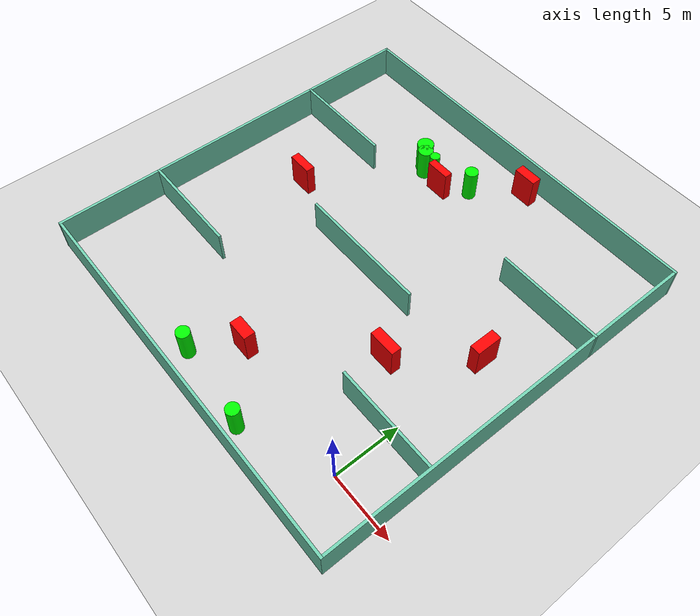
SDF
<sdf version="1.7">
 <world name="default">
  <light name="sun" type="directional">
   <pose>0 0 10 0 -0 0</pose>
   <diffuse>0.8 0.8 0.8 1</diffuse>
   <specular>0.2 0.2 0.2 1</specular>
   <attenuation>
    <range>1000</range>
    <constant>0.9</constant>
    <linear>0.01</linear>
    <quadratic>0.001</quadratic>
   </attenuation>
   <direction>-0.5 0.1 -0.9</direction>
   <spot><inner_angle>0</inner_angle><outer_angle>0</outer_angle><falloff>0</falloff></spot>
  </light>
  <model name="ground_plane">
   <static>1</static>
   <link name="link">
    <collision name="collision">
     <geometry><plane><normal>0 0 1</normal><size>100 100</size></plane></geometry>
     <surface>
      <contact><collide_bitmask>65535</collide_bitmask></contact>
      <friction><ode><mu>100</mu><mu2>50</mu2></ode></friction>
     </surface>
    </collision>
    <visual name="visual">
     <cast_shadows>0</cast_shadows>
     <geometry><plane><normal>0 0 1</normal><size>100 100</size></plane></geometry>
     <material>
      <script><uri>file://media/materials/scripts/gazebo.material</uri><name>Gazebo/Grey</name></script>
     </material>
    </visual>
   </link>
  </model>
  <gravity>0 0 -9.8</gravity>
  <magnetic_field>6e-06 2.3e-05 -4.2e-05</magnetic_field>
  <atmosphere type="adiabatic"/>
  <physics type="ode">
   <max_step_size>0.001</max_step_size>
   <real_time_factor>1</real_time_factor>
   <real_time_update_rate>1000</real_time_update_rate>
  </physics>
  <scene><ambient>0.4 0.4 0.4 1</ambient><background>0.7 0.7 0.7 1</background><shadows>1</shadows></scene>
  <spherical_coordinates>
   <surface_model>EARTH_WGS84</surface_model>
   <latitude_deg>0</latitude_deg>
   <longitude_deg>0</longitude_deg>
   <elevation>0</elevation>
   <heading_deg>0</heading_deg>
  </spherical_coordinates>
  <model name="my_base_walls">
   <link name="Wall_10">
    <collision name="Wall_10_Collision">
     <geometry><box><size>8.2 0.2 2.5</size></box></geometry>
     <pose>0 0 1.25 0 -0 0</pose>
    </collision>
    <visual name="Wall_10_Visual">
     <pose>0 0 1.25 0 -0 0</pose>
     <geometry><box><size>8.2 0.2 2.5</size></box></geometry>
     <material>
      <script><uri>file://media/materials/scripts/gazebo.material</uri><name>Gazebo/Grey</name></script>
      <ambient>0.435294 0.796078 0.67451 1</ambient>
     </material>
     <meta><layer>0</layer></meta>
    </visual>
    <pose>-11 -7 0 0 -0 0</pose>
   </link>
   <link name="Wall_12">
    <collision name="Wall_12_Collision">
     <geometry><box><size>8.2 0.2 2.5</size></box></geometry>
     <pose>0 0 1.25 0 -0 0</pose>
    </collision>
    <visual name="Wall_12_Visual">
     <pose>0 0 1.25 0 -0 0</pose>
     <geometry><box><size>8.2 0.2 2.5</size></box></geometry>
     <material>
      <script><uri>file://media/materials/scripts/gazebo.material</uri><name>Gazebo/Grey</name></script>
      <ambient>0.435294 0.796078 0.67451 1</ambient>
     </material>
     <meta><layer>0</layer></meta>
    </visual>
    <pose>-11 7 0 0 -0 0</pose>
   </link>
   <link name="Wall_14">
    <collision name="Wall_14_Collision">
     <geometry><box><size>8.2 0.2 2.5</size></box></geometry>
     <pose>0 0 1.25 0 -0 0</pose>
    </collision>
    <visual name="Wall_14_Visual">
     <pose>0 0 1.25 0 -0 0</pose>
     <geometry><box><size>8.2 0.2 2.5</size></box></geometry>
     <material>
      <script><uri>file://media/materials/scripts/gazebo.material</uri><name>Gazebo/Grey</name></script>
      <ambient>0.435294 0.796078 0.67451 1</ambient>
     </material>
     <meta><layer>0</layer></meta>
    </visual>
    <pose>11 7 0 0 -0 3.14159</pose>
   </link>
   <link name="Wall_16">
    <collision name="Wall_16_Collision">
     <geometry><box><size>10.2 0.2 2.5</size></box></geometry>
     <pose>0 0 1.25 0 -0 0</pose>
    </collision>
    <visual name="Wall_16_Visual">
     <pose>0 0 1.25 0 -0 0</pose>
     <geometry><box><size>10.2 0.2 2.5</size></box></geometry>
     <material>
      <script><uri>file://media/materials/scripts/gazebo.material</uri><name>Gazebo/Grey</name></script>
      <ambient>0.435294 0.796078 0.67451 1</ambient>
     </material>
     <meta><layer>0</layer></meta>
    </visual>
    <pose>0 0 0 0 -0 3.14159</pose>
   </link>
   <link name="Wall_2">
    <collision name="Wall_2_Collision">
     <geometry><box><size>30.2 0.2 2.5</size></box></geometry>
     <pose>0 0 1.25 0 -0 0</pose>
    </collision>
    <visual name="Wall_2_Visual">
     <pose>0 0 1.25 0 -0 0</pose>
     <geometry><box><size>30.2 0.2 2.5</size></box></geometry>
     <material>
      <script><uri>file://media/materials/scripts/gazebo.material</uri><name>Gazebo/Grey</name></script>
      <ambient>0.435294 0.796078 0.67451 1</ambient>
     </material>
     <meta><layer>0</layer></meta>
    </visual>
    <pose>0 -15 0 0 -0 3.14159</pose>
   </link>
   <link name="Wall_3">
    <collision name="Wall_3_Collision">
     <geometry><box><size>30.2 0.2 2.5</size></box></geometry>
     <pose>0 0 1.25 0 -0 0</pose>
    </collision>
    <visual name="Wall_3_Visual">
     <pose>0 0 1.25 0 -0 0</pose>
     <geometry><box><size>30.2 0.2 2.5</size></box></geometry>
     <material>
      <script><uri>file://media/materials/scripts/gazebo.material</uri><name>Gazebo/Grey</name></script>
      <ambient>0.435294 0.796078 0.67451 1</ambient>
     </material>
     <meta><layer>0</layer></meta>
    </visual>
    <pose>-15 0 0 0 -0 1.5708</pose>
   </link>
   <link name="Wall_4">
    <collision name="Wall_4_Collision">
     <geometry><box><size>30.2 0.2 2.5</size></box></geometry>
     <pose>0 0 1.25 0 -0 0</pose>
    </collision>
    <visual name="Wall_4_Visual">
     <pose>0 0 1.25 0 -0 0</pose>
     <geometry><box><size>30.2 0.2 2.5</size></box></geometry>
     <material>
      <script><uri>file://media/materials/scripts/gazebo.material</uri><name>Gazebo/Grey</name></script>
      <ambient>0.435294 0.796078 0.67451 1</ambient>
     </material>
     <meta><layer>0</layer></meta>
    </visual>
    <pose>0 15 0 0 -0 0</pose>
   </link>
   <link name="Wall_6">
    <collision name="Wall_6_Collision">
     <geometry><box><size>30.2 0.2 2.5</size></box></geometry>
     <pose>0 0 1.25 0 -0 0</pose>
    </collision>
    <visual name="Wall_6_Visual">
     <pose>0 0 1.25 0 -0 0</pose>
     <geometry><box><size>30.2 0.2 2.5</size></box></geometry>
     <material>
      <script><uri>file://media/materials/scripts/gazebo.material</uri><name>Gazebo/Grey</name></script>
      <ambient>0.435294 0.796078 0.67451 1</ambient>
     </material>
     <meta><layer>0</layer></meta>
    </visual>
    <pose>15 0 0 0 -0 1.5708</pose>
   </link>
   <link name="Wall_8">
    <collision name="Wall_8_Collision">
     <geometry><box><size>8.2 0.2 2.5</size></box></geometry>
     <pose>0 0 1.25 0 -0 0</pose>
    </collision>
    <visual name="Wall_8_Visual">
     <pose>0 0 1.25 0 -0 0</pose>
     <geometry><box><size>8.2 0.2 2.5</size></box></geometry>
     <material>
      <script><uri>file://media/materials/scripts/gazebo.material</uri><name>Gazebo/Grey</name></script>
      <ambient>0.435294 0.796078 0.67451 1</ambient>
     </material>
     <meta><layer>0</layer></meta>
    </visual>
    <pose>11 -7 0 0 -0 3.14159</pose>
   </link>
   <static>1</static>
   <pose>-11 11 0 0 -0 0</pose>
  </model>
  <model name="cylinder1">
   <static>1</static>
   <link name="link">
    <inertial>
     <mass>1</mass>
     <inertia><ixx>0.5</ixx><ixy>0</ixy><ixz>0</ixz><iyy>0.5</iyy><iyz>0</iyz><izz>1</izz></inertia>
    </inertial>
    <collision name="collision">
     <geometry><cylinder><radius>0.5073382735187829</radius><length>2.5</length></cylinder></geometry>
    </collision>
    <visual name="visual">
     <geometry><cylinder><radius>0.5073382735187829</radius><length>2.5</length></cylinder></geometry>
     <material>
      <ambient>0 1 0 1</ambient>
      <diffuse>0 1 0 1</diffuse>
      <specular>0.1 0.1 0.1 1</specular>
      <emissive>0 0 0 0</emissive>
     </material>
    </visual>
   </link>
   <pose>-11.302781672084139 21.793538430567068 1.25 0 0 0</pose>
  </model>
  <model name="cylinder2">
   <static>1</static>
   <link name="link">
    <inertial>
     <mass>1</mass>
     <inertia><ixx>0.5</ixx><ixy>0</ixy><ixz>0</ixz><iyy>0.5</iyy><iyz>0</iyz><izz>1</izz></inertia>
    </inertial>
    <collision name="collision">
     <geometry><cylinder><radius>0.5021453721136212</radius><length>2.5</length></cylinder></geometry>
    </collision>
    <visual name="visual">
     <geometry><cylinder><radius>0.5021453721136212</radius><length>2.5</length></cylinder></geometry>
     <material>
      <ambient>0 1 0 1</ambient>
      <diffuse>0 1 0 1</diffuse>
      <specular>0.1 0.1 0.1 1</specular>
      <emissive>0 0 0 0</emissive>
     </material>
    </visual>
   </link>
   <pose>-12.861141742715454 -2.1578265313845857 1.25 0 0 0</pose>
  </model>
  <model name="cylinder3">
   <static>1</static>
   <link name="link">
    <inertial>
     <mass>1</mass>
     <inertia><ixx>0.5</ixx><ixy>0</ixy><ixz>0</ixz><iyy>0.5</iyy><iyz>0</iyz><izz>1</izz></inertia>
    </inertial>
    <collision name="collision">
     <geometry><cylinder><radius>0.564566567776275</radius><length>2.5</length></cylinder></geometry>
    </collision>
    <visual name="visual">
     <geometry><cylinder><radius>0.564566567776275</radius><length>2.5</length></cylinder></geometry>
     <material>
      <ambient>0 1 0 1</ambient>
      <diffuse>0 1 0 1</diffuse>
      <specular>0.1 0.1 0.1 1</specular>
      <emissive>0 0 0 0</emissive>
     </material>
    </visual>
   </link>
   <pose>-15.078078833347401 20.641712693369602 1.25 0 0 0</pose>
  </model>
  <model name="cylinder4">
   <static>1</static>
   <link name="link">
    <inertial>
     <mass>1</mass>
     <inertia><ixx>0.5</ixx><ixy>0</ixy><ixz>0</ixz><iyy>0.5</iyy><iyz>0</iyz><izz>1</izz></inertia>
    </inertial>
    <collision name="collision">
     <geometry><cylinder><radius>0.3860494187753831</radius><length>2.5</length></cylinder></geometry>
    </collision>
    <visual name="visual">
     <geometry><cylinder><radius>0.3860494187753831</radius><length>2.5</length></cylinder></geometry>
     <material>
      <ambient>0 1 0 1</ambient>
      <diffuse>0 1 0 1</diffuse>
      <specular>0.1 0.1 0.1 1</specular>
      <emissive>0 0 0 0</emissive>
     </material>
    </visual>
   </link>
   <pose>-14.193650144115388 20.773893561388178 1.25 0 0 0</pose>
  </model>
  <model name="cylinder5">
   <static>1</static>
   <link name="link">
    <inertial>
     <mass>1</mass>
     <inertia><ixx>0.5</ixx><ixy>0</ixy><ixz>0</ixz><iyy>0.5</iyy><iyz>0</iyz><izz>1</izz></inertia>
    </inertial>
    <collision name="collision">
     <geometry><cylinder><radius>0.6325457354973687</radius><length>2.5</length></cylinder></geometry>
    </collision>
    <visual name="visual">
     <geometry><cylinder><radius>0.6325457354973687</radius><length>2.5</length></cylinder></geometry>
     <material>
      <ambient>0 1 0 1</ambient>
      <diffuse>0 1 0 1</diffuse>
      <specular>0.1 0.1 0.1 1</specular>
      <emissive>0 0 0 0</emissive>
     </material>
    </visual>
   </link>
   <pose>-15.588112516973702 21.077261971371332 1.25 0 0 0</pose>
  </model>
  <model name="cylinder6">
   <static>1</static>
   <link name="link">
    <inertial>
     <mass>1</mass>
     <inertia><ixx>0.5</ixx><ixy>0</ixy><ixz>0</ixz><iyy>0.5</iyy><iyz>0</iyz><izz>1</izz></inertia>
    </inertial>
    <collision name="collision">
     <geometry><cylinder><radius>0.4844819932821697</radius><length>2.5</length></cylinder></geometry>
    </collision>
    <visual name="visual">
     <geometry><cylinder><radius>0.4844819932821697</radius><length>2.5</length></cylinder></geometry>
     <material>
      <ambient>0 1 0 1</ambient>
      <diffuse>0 1 0 1</diffuse>
      <specular>0.1 0.1 0.1 1</specular>
      <emissive>0 0 0 0</emissive>
     </material>
    </visual>
   </link>
   <pose>-6.334334642386443 -2.743926054685205 1.25 0 0 0</pose>
  </model>
  <model name="box1">
   <static>1</static>
   <link name="link">
    <inertial>
     <mass>1</mass>
     <inertia><ixx>0.083</ixx><ixy>0</ixy><ixz>0</ixz><iyy>0.083</iyy><iyz>0</iyz><izz>0.083</izz></inertia>
    </inertial>
    <collision name="collision">
     <geometry><box><size>1.9038775014283411 0.6697021464889379 2.5</size></box></geometry>
    </collision>
    <visual name="visual">
     <geometry><box><size>1.9038775014283411 0.6697021464889379 2.5</size></box></geometry>
     <material>
      <ambient>1 0 0 1</ambient>
      <diffuse>1 0 0 1</diffuse>
      <specular>0.1 0.1 0.1 1</specular>
      <emissive>0 0 0 0</emissive>
     </material>
    </visual>
    <sensor name="my_contact" type="contact">
     <contact><collision>box_collision</collision><topic>__default_topic__</topic></contact>
    </sensor>
   </link>
   <pose>-19.97408541345341 12.722721662987095 1.25 0 0 0</pose>
  </model>
  <model name="box2">
   <static>1</static>
   <link name="link">
    <inertial>
     <mass>1</mass>
     <inertia><ixx>0.083</ixx><ixy>0</ixy><ixz>0</ixz><iyy>0.083</iyy><iyz>0</iyz><izz>0.083</izz></inertia>
    </inertial>
    <collision name="collision">
     <geometry><box><size>2.0742723257192557 0.7675232946930788 2.5</size></box></geometry>
    </collision>
    <visual name="visual">
     <geometry><box><size>2.0742723257192557 0.7675232946930788 2.5</size></box></geometry>
     <material>
      <ambient>1 0 0 1</ambient>
      <diffuse>1 0 0 1</diffuse>
      <specular>0.1 0.1 0.1 1</specular>
      <emissive>0 0 0 0</emissive>
     </material>
    </visual>
    <sensor name="my_contact" type="contact">
     <contact><collision>box_collision</collision><topic>__default_topic__</topic></contact>
    </sensor>
   </link>
   <pose>-4.171228193520843 7.462228121061477 1.25 0 0 0</pose>
  </model>
  <model name="box3">
   <static>1</static>
   <link name="link">
    <inertial>
     <mass>1</mass>
     <inertia><ixx>0.083</ixx><ixy>0</ixy><ixz>0</ixz><iyy>0.083</iyy><iyz>0</iyz><izz>0.083</izz></inertia>
    </inertial>
    <collision name="collision">
     <geometry><box><size>1.84989757763089 0.6103903539282133 2.5</size></box></geometry>
    </collision>
    <visual name="visual">
     <geometry><box><size>1.84989757763089 0.6103903539282133 2.5</size></box></geometry>
     <material>
      <ambient>1 0 0 1</ambient>
      <diffuse>1 0 0 1</diffuse>
      <specular>0.1 0.1 0.1 1</specular>
      <emissive>0 0 0 0</emissive>
     </material>
    </visual>
    <sensor name="my_contact" type="contact">
     <contact><collision>box_collision</collision><topic>__default_topic__</topic></contact>
    </sensor>
   </link>
   <pose>-13.039065571813293 20.23141602477156 1.25 0 0 0</pose>
  </model>
  <model name="box4">
   <static>1</static>
   <link name="link">
    <inertial>
     <mass>1</mass>
     <inertia><ixx>0.083</ixx><ixy>0</ixy><ixz>0</ixz><iyy>0.083</iyy><iyz>0</iyz><izz>0.083</izz></inertia>
    </inertial>
    <collision name="collision">
     <geometry><box><size>1.6283111439951794 0.8450173448459821 2.5</size></box></geometry>
    </collision>
    <visual name="visual">
     <geometry><box><size>1.6283111439951794 0.8450173448459821 2.5</size></box></geometry>
     <material>
      <ambient>1 0 0 1</ambient>
      <diffuse>1 0 0 1</diffuse>
      <specular>0.1 0.1 0.1 1</specular>
      <emissive>0 0 0 0</emissive>
     </material>
    </visual>
    <sensor name="my_contact" type="contact">
     <contact><collision>box_collision</collision><topic>__default_topic__</topic></contact>
    </sensor>
   </link>
   <pose>-10.726644646556984 0.9787702981992354 1.25 0 0 0</pose>
  </model>
  <model name="box5">
   <static>1</static>
   <link name="link">
    <inertial>
     <mass>1</mass>
     <inertia><ixx>0.083</ixx><ixy>0</ixy><ixz>0</ixz><iyy>0.083</iyy><iyz>0</iyz><izz>0.083</izz></inertia>
    </inertial>
    <collision name="collision">
     <geometry><box><size>0.7850001083418419 1.922115320553156 2.5</size></box></geometry>
    </collision>
    <visual name="visual">
     <geometry><box><size>0.7850001083418419 1.922115320553156 2.5</size></box></geometry>
     <material>
      <ambient>1 0 0 1</ambient>
      <diffuse>1 0 0 1</diffuse>
      <specular>0.1 0.1 0.1 1</specular>
      <emissive>0 0 0 0</emissive>
     </material>
    </visual>
    <sensor name="my_contact" type="contact">
     <contact><collision>box_collision</collision><topic>__default_topic__</topic></contact>
    </sensor>
   </link>
   <pose>-0.10583371263362196 12.293328381001132 1.25 0 0 0</pose>
  </model>
  <model name="box6">
   <static>1</static>
   <link name="link">
    <inertial>
     <mass>1</mass>
     <inertia><ixx>0.083</ixx><ixy>0</ixy><ixz>0</ixz><iyy>0.083</iyy><iyz>0</iyz><izz>0.083</izz></inertia>
    </inertial>
    <collision name="collision">
     <geometry><box><size>1.7689310560325593 0.7587425290802565 2.5</size></box></geometry>
    </collision>
    <visual name="visual">
     <geometry><box><size>1.7689310560325593 0.7587425290802565 2.5</size></box></geometry>
     <material>
      <ambient>1 0 0 1</ambient>
      <diffuse>1 0 0 1</diffuse>
      <specular>0.1 0.1 0.1 1</specular>
      <emissive>0 0 0 0</emissive>
     </material>
    </visual>
    <sensor name="my_contact" type="contact">
     <contact><collision>box_collision</collision><topic>__default_topic__</topic></contact>
    </sensor>
   </link>
   <pose>-8.476284840281352 24.795203106152574 1.25 0 0 0</pose>
  </model>
 </world>
</sdf>
